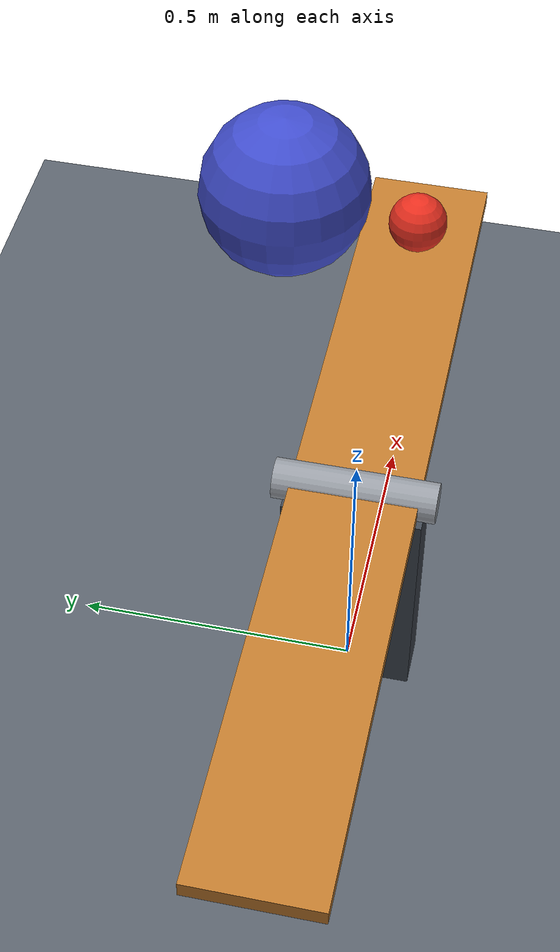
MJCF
<mujoco model="gravity_seesaw_launcher">
  <compiler angle="degree" autolimits="true"/>
  <option timestep="0.002" gravity="0 0 -9.81" integrator="implicitfast" iterations="100" tolerance="1e-10"/>

  <worldbody>
    <light name="overhead_light" pos="0 -2 4" dir="0 0 -1"/>
    <geom name="floor" type="plane" size="5 5 0.1" rgba="0.35 0.38 0.42 1" friction="0.8 0.005 0.0001" solref="0.004 1" solimp="0.95 0.99 0.001"/>

    <body name="fulcrum" pos="0 0 0.215">
      <geom name="fulcrum_support" type="box" size="0.045 0.12 0.215" rgba="0.25 0.28 0.32 1" contype="0" conaffinity="0"/>
      <geom name="fulcrum_axle" type="cylinder" pos="0 0 0.235" euler="90 0 0" size="0.035 0.14" rgba="0.6 0.62 0.65 1" contype="0" conaffinity="0"/>
    </body>

    <body name="seesaw" pos="0 0 0.45">
      <joint name="seesaw_hinge" type="hinge" axis="0 1 0" range="-28 0" damping="0.015" solreflimit="0.004 1" solimplimit="0.99 0.999 0.001"/>
      <geom name="seesaw_deck" type="box" size="0.8 0.11 0.015" mass="0.2" rgba="0.75 0.48 0.18 1" friction="0.7 0.005 0.0001" solref="0.004 1" solimp="0.95 0.99 0.001"/>
    </body>

    <body name="weight" pos="-0.62 0 1.60">
      <freejoint name="weight_free"/>
      <geom name="weight_sphere" type="sphere" size="0.09" mass="1" rgba="0.25 0.3 0.8 1" friction="0.7 0.005 0.0001" solref="0.004 1" solimp="0.95 0.99 0.001"/>
    </body>

    <body name="ball" pos="0.62 0 0.52">
      <freejoint name="ball_free"/>
      <geom name="ball" type="sphere" size="0.055" mass="0.1" rgba="0.9 0.18 0.12 1" friction="0.7 0.005 0.0001" solref="0.004 1" solimp="0.95 0.99 0.001"/>
    </body>
  </worldbody>

  <keyframe>
    <key name="start" qpos="0 -0.62 0 1.60 1 0 0 0 0.62 0 0.52 1 0 0 0"/>
  </keyframe>
</mujoco>
